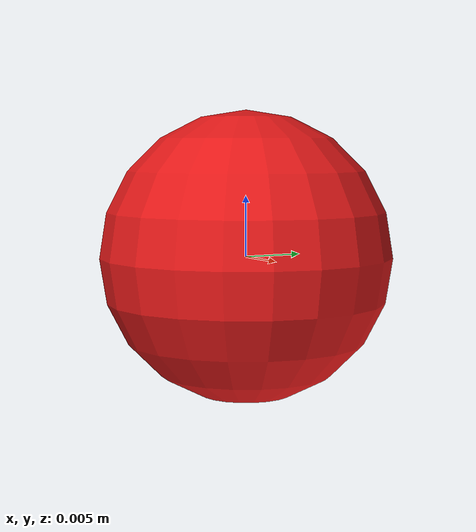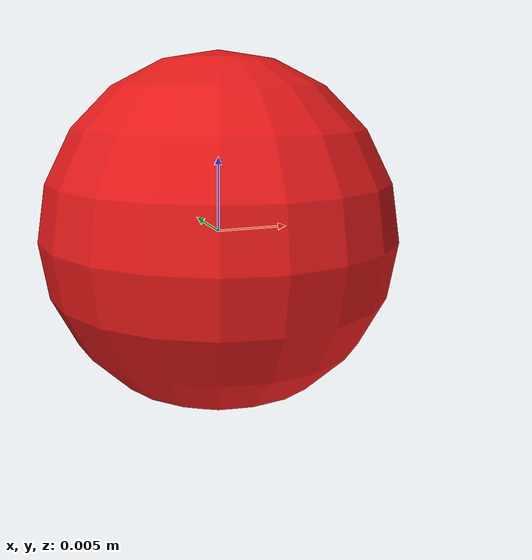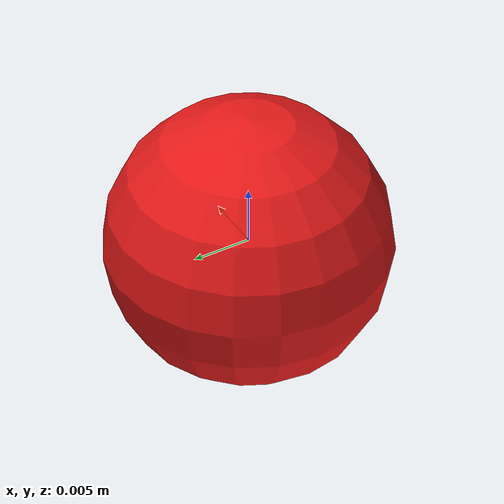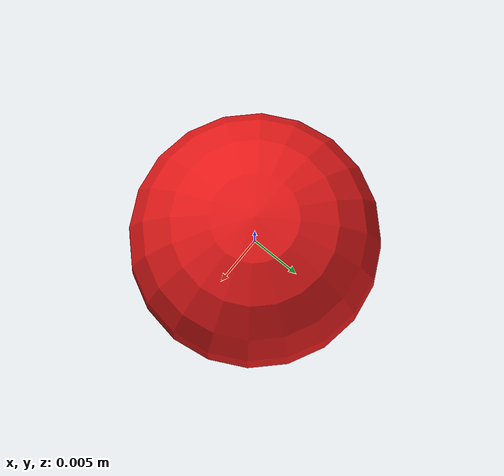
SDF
<?xml version="1.0" ?>
<sdf version="1.5">
  <!-- Apple: collision cylinder r=0.012 h=0.024 (parsable sphere approx) → width=24mm (hand_close=20) -->
  <model name="apple">
    <link name="link">
      <pose>0 0 0 0 0 0</pose>
      <inertial>
        <mass>0.020</mass>
        <inertia>
          <ixx>1.25e-6</ixx>
          <ixy>0</ixy><ixz>0</ixz>
          <iyy>1.25e-6</iyy>
          <iyz>0</iyz>
          <izz>1.44e-6</izz>
        </inertia>
      </inertial>
      <collision name="collision">
        <geometry>
          <!-- Cylinder approximation of sphere for parsable dimensions -->
          <cylinder><radius>0.012</radius><length>0.024</length></cylinder>
        </geometry>
        <surface>
          <contact><ode><kp>1000000</kp><kd>100</kd><max_vel>0.1</max_vel><min_depth>0.001</min_depth></ode></contact>
          <friction><ode><mu>1.2</mu><mu2>1.2</mu2></ode><torsional><coefficient>1.0</coefficient><use_patch_radius>0</use_patch_radius><surface_radius>0.012</surface_radius></torsional></friction>
        </surface>
      </collision>
      <visual name="visual">
        <geometry><sphere><radius>0.012</radius></sphere></geometry>
        <material><ambient>0.9 0.1 0.1 1</ambient><diffuse>0.9 0.1 0.1 1</diffuse></material>
      </visual>
    </link>
  </model>
</sdf>
